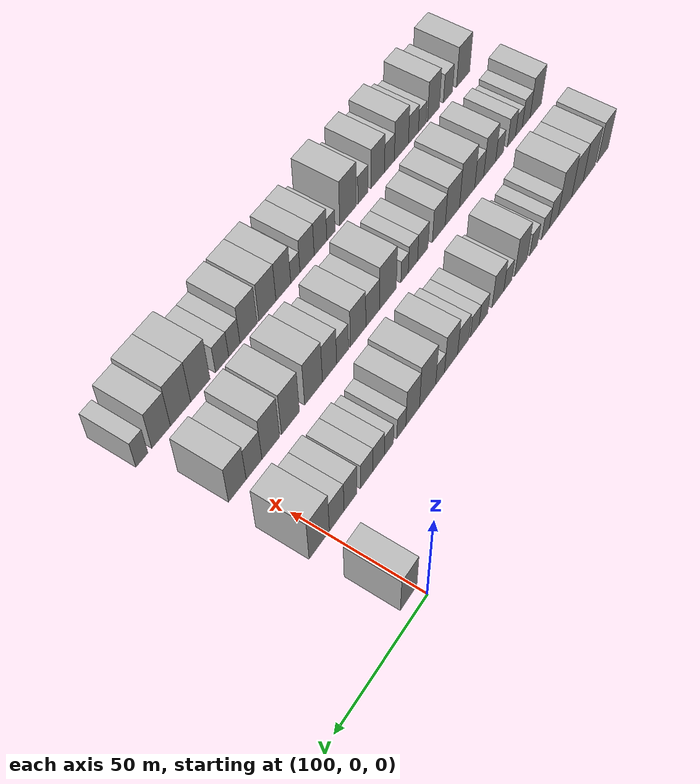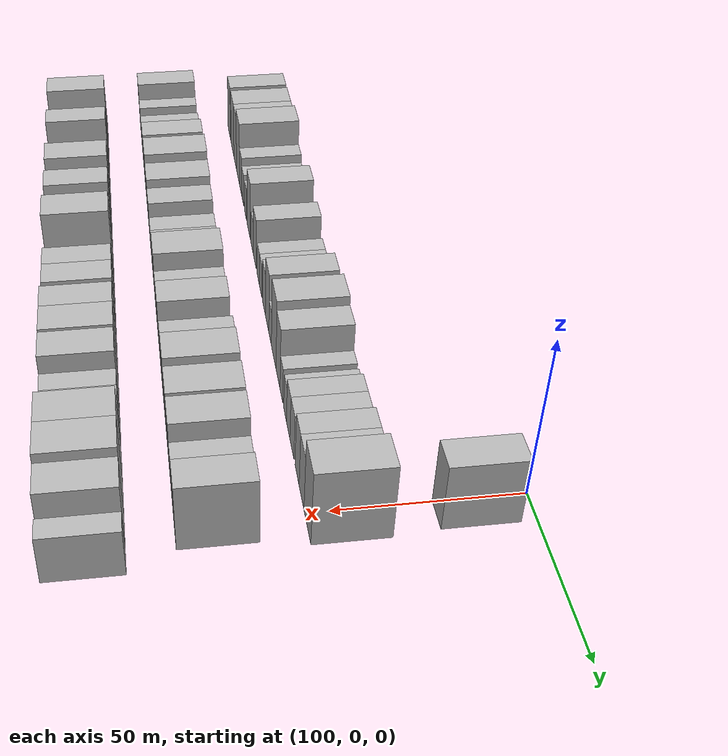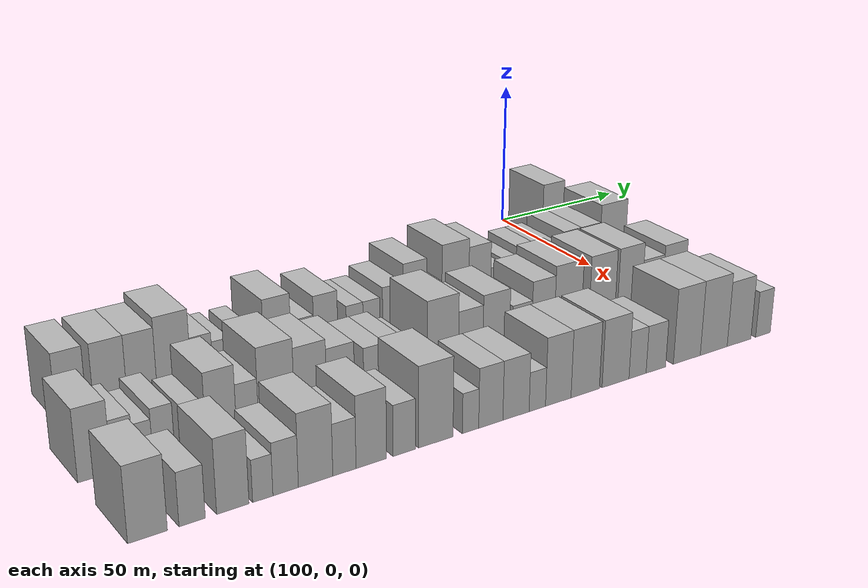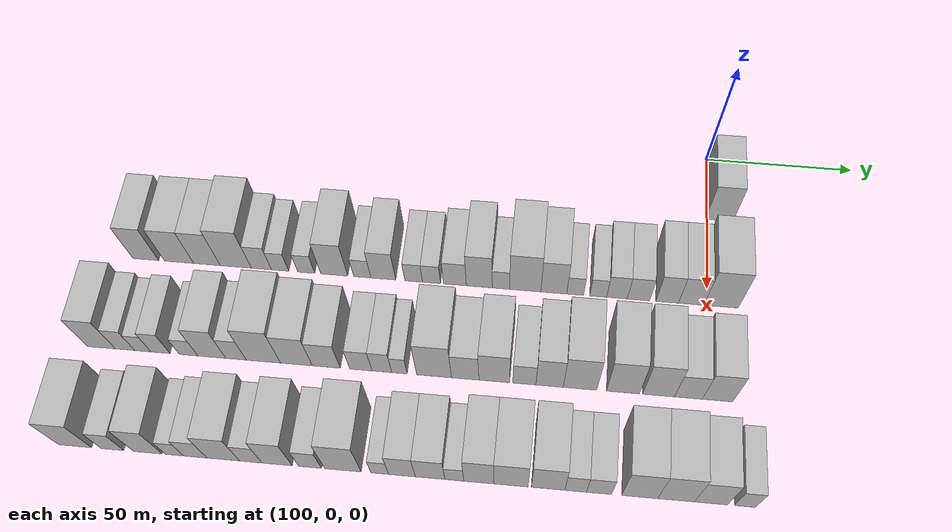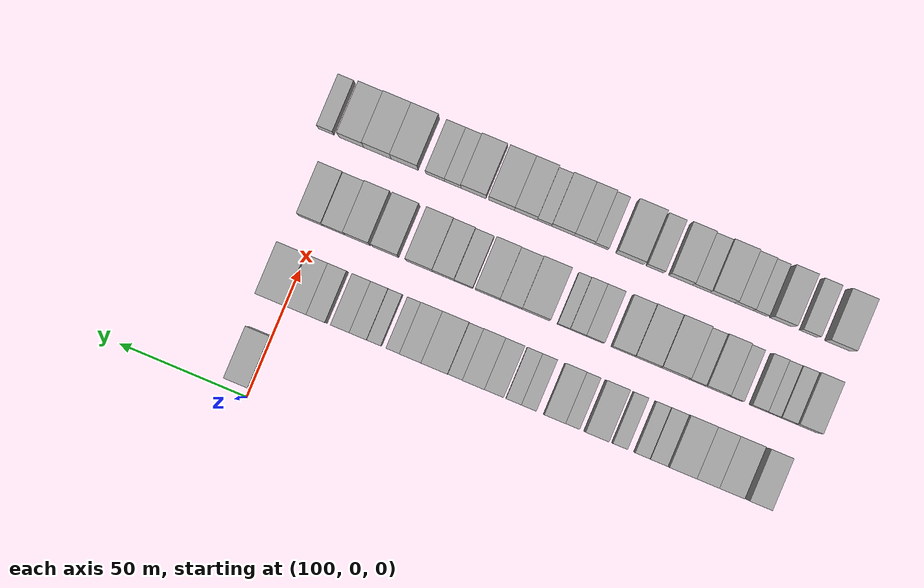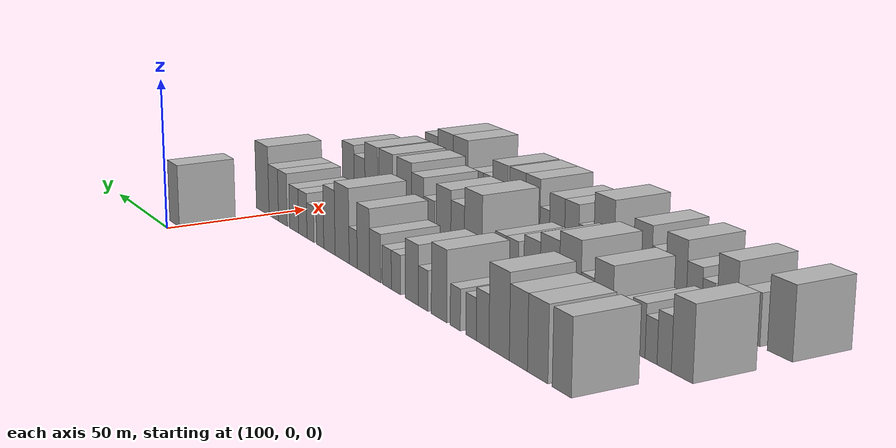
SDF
<sdf version="1.6">
 <world name="default">
  <model name="building_300">
   <static>1</static>
   <pose>114.0000 4.1435 0 0.000000 0.000000 0.000000</pose>
   <link name="link">
    <pose>0 0 10.50 0 0 0</pose>
    <collision name="collision"><geometry><box><size>20.0000 9.3082 21.0000</size></box></geometry></collision>
    <visual name="visual">
     <cast_shadows>0</cast_shadows>
     <geometry><box><size>20.0000 9.3082 21.0000</size></box></geometry>
     <material>
      <script>
       <uri>model://HANNAS_wall/materials/scripts</uri>
       <uri>model://HANNAS_wall/materials/textures</uri>
       <name>vrc/HANNAS_wall</name>
      </script>
     </material>
    </visual>
   </link>
  </model>
  <model name="building_396">
   <static>1</static>
   <pose>146.0000 -184.8629 0 0.000000 0.000000 0.000000</pose>
   <link name="link">
    <pose>0 0 10.50 0 0 0</pose>
    <collision name="collision"><geometry><box><size>20.0000 8.6927 21.0000</size></box></geometry></collision>
    <visual name="visual">
     <cast_shadows>0</cast_shadows>
     <geometry><box><size>20.0000 8.6927 21.0000</size></box></geometry>
     <material>
      <script>
       <uri>model://HANNAS_wall/materials/scripts</uri>
       <uri>model://HANNAS_wall/materials/textures</uri>
       <name>vrc/HANNAS_wall</name>
      </script>
     </material>
    </visual>
   </link>
  </model>
  <model name="building_397">
   <static>1</static>
   <pose>146.0000 -173.6472 0 0.000000 0.000000 0.000000</pose>
   <link name="link">
    <pose>0 0 10.50 0 0 0</pose>
    <collision name="collision"><geometry><box><size>20.0000 9.7388 21.0000</size></box></geometry></collision>
    <visual name="visual">
     <cast_shadows>0</cast_shadows>
     <geometry><box><size>20.0000 9.7388 21.0000</size></box></geometry>
     <material>
      <script>
       <uri>model://HANNAS_wall/materials/scripts</uri>
       <uri>model://HANNAS_wall/materials/textures</uri>
       <name>vrc/HANNAS_wall</name>
      </script>
     </material>
    </visual>
   </link>
  </model>
  <model name="building_398">
   <static>1</static>
   <pose>146.0000 -164.3111 0 0.000000 0.000000 0.000000</pose>
   <link name="link">
    <pose>0 0 10.50 0 0 0</pose>
    <collision name="collision"><geometry><box><size>20.0000 8.9334 21.0000</size></box></geometry></collision>
    <visual name="visual">
     <cast_shadows>0</cast_shadows>
     <geometry><box><size>20.0000 8.9334 21.0000</size></box></geometry>
     <material>
      <script>
       <uri>model://HANNAS_wall/materials/scripts</uri>
       <uri>model://HANNAS_wall/materials/textures</uri>
       <name>vrc/HANNAS_wall</name>
      </script>
     </material>
    </visual>
   </link>
  </model>
  <model name="building_399">
   <static>1</static>
   <pose>146.0000 -154.6251 0 0.000000 0.000000 0.000000</pose>
   <link name="link">
    <pose>0 0 12.00 0 0 0</pose>
    <collision name="collision"><geometry><box><size>20.0000 10.4385 24.0000</size></box></geometry></collision>
    <visual name="visual">
     <cast_shadows>0</cast_shadows>
     <geometry><box><size>20.0000 10.4385 24.0000</size></box></geometry>
     <material>
      <script>
       <uri>model://HANNAS_wall/materials/scripts</uri>
       <uri>model://HANNAS_wall/materials/textures</uri>
       <name>vrc/HANNAS_wall</name>
      </script>
     </material>
    </visual>
   </link>
  </model>
  <model name="building_400">
   <static>1</static>
   <pose>146.0000 -146.0442 0 0.000000 0.000000 0.000000</pose>
   <link name="link">
    <pose>0 0 7.50 0 0 0</pose>
    <collision name="collision"><geometry><box><size>20.0000 6.7233 15.0000</size></box></geometry></collision>
    <visual name="visual">
     <cast_shadows>0</cast_shadows>
     <geometry><box><size>20.0000 6.7233 15.0000</size></box></geometry>
     <material>
      <script>
       <uri>model://HANNAS_wall/materials/scripts</uri>
       <uri>model://HANNAS_wall/materials/textures</uri>
       <name>vrc/HANNAS_wall</name>
      </script>
     </material>
    </visual>
   </link>
  </model>
  <model name="building_401">
   <static>1</static>
   <pose>146.0000 -139.8177 0 0.000000 0.000000 0.000000</pose>
   <link name="link">
    <pose>0 0 6.00 0 0 0</pose>
    <collision name="collision"><geometry><box><size>20.0000 5.7298 12.0000</size></box></geometry></collision>
    <visual name="visual">
     <cast_shadows>0</cast_shadows>
     <geometry><box><size>20.0000 5.7298 12.0000</size></box></geometry>
     <material>
      <script>
       <uri>model://HANNAS_wall/materials/scripts</uri>
       <uri>model://HANNAS_wall/materials/textures</uri>
       <name>vrc/HANNAS_wall</name>
      </script>
     </material>
    </visual>
   </link>
  </model>
  <model name="building_402">
   <static>1</static>
   <pose>146.0000 -131.1283 0 0.000000 0.000000 0.000000</pose>
   <link name="link">
    <pose>0 0 6.00 0 0 0</pose>
    <collision name="collision"><geometry><box><size>20.0000 5.6490 12.0000</size></box></geometry></collision>
    <visual name="visual">
     <cast_shadows>0</cast_shadows>
     <geometry><box><size>20.0000 5.6490 12.0000</size></box></geometry>
     <material>
      <script>
       <uri>model://HANNAS_wall/materials/scripts</uri>
       <uri>model://HANNAS_wall/materials/textures</uri>
       <name>vrc/HANNAS_wall</name>
      </script>
     </material>
    </visual>
   </link>
  </model>
  <model name="building_403">
   <static>1</static>
   <pose>146.0000 -121.8297 0 0.000000 0.000000 0.000000</pose>
   <link name="link">
    <pose>0 0 10.50 0 0 0</pose>
    <collision name="collision"><geometry><box><size>20.0000 8.9483 21.0000</size></box></geometry></collision>
    <visual name="visual">
     <cast_shadows>0</cast_shadows>
     <geometry><box><size>20.0000 8.9483 21.0000</size></box></geometry>
     <material>
      <script>
       <uri>model://HANNAS_wall/materials/scripts</uri>
       <uri>model://HANNAS_wall/materials/textures</uri>
       <name>vrc/HANNAS_wall</name>
      </script>
     </material>
    </visual>
   </link>
  </model>
  <model name="building_404">
   <static>1</static>
   <pose>146.0000 -112.5162 0 0.000000 0.000000 0.000000</pose>
   <link name="link">
    <pose>0 0 6.00 0 0 0</pose>
    <collision name="collision"><geometry><box><size>20.0000 5.6787 12.0000</size></box></geometry></collision>
    <visual name="visual">
     <cast_shadows>0</cast_shadows>
     <geometry><box><size>20.0000 5.6787 12.0000</size></box></geometry>
     <material>
      <script>
       <uri>model://HANNAS_wall/materials/scripts</uri>
       <uri>model://HANNAS_wall/materials/textures</uri>
       <name>vrc/HANNAS_wall</name>
      </script>
     </material>
    </visual>
   </link>
  </model>
  <model name="building_405">
   <static>1</static>
   <pose>146.0000 -105.5945 0 0.000000 0.000000 0.000000</pose>
   <link name="link">
    <pose>0 0 9.00 0 0 0</pose>
    <collision name="collision"><geometry><box><size>20.0000 8.1646 18.0000</size></box></geometry></collision>
    <visual name="visual">
     <cast_shadows>0</cast_shadows>
     <geometry><box><size>20.0000 8.1646 18.0000</size></box></geometry>
     <material>
      <script>
       <uri>model://HANNAS_wall/materials/scripts</uri>
       <uri>model://HANNAS_wall/materials/textures</uri>
       <name>vrc/HANNAS_wall</name>
      </script>
     </material>
    </visual>
   </link>
  </model>
  <model name="building_406">
   <static>1</static>
   <pose>146.0000 -95.5960 0 0.000000 0.000000 0.000000</pose>
   <link name="link">
    <pose>0 0 6.00 0 0 0</pose>
    <collision name="collision"><geometry><box><size>20.0000 5.8324 12.0000</size></box></geometry></collision>
    <visual name="visual">
     <cast_shadows>0</cast_shadows>
     <geometry><box><size>20.0000 5.8324 12.0000</size></box></geometry>
     <material>
      <script>
       <uri>model://HANNAS_wall/materials/scripts</uri>
       <uri>model://HANNAS_wall/materials/textures</uri>
       <name>vrc/HANNAS_wall</name>
      </script>
     </material>
    </visual>
   </link>
  </model>
  <model name="building_407">
   <static>1</static>
   <pose>146.0000 -89.7184 0 0.000000 0.000000 0.000000</pose>
   <link name="link">
    <pose>0 0 6.00 0 0 0</pose>
    <collision name="collision"><geometry><box><size>20.0000 5.9228 12.0000</size></box></geometry></collision>
    <visual name="visual">
     <cast_shadows>0</cast_shadows>
     <geometry><box><size>20.0000 5.9228 12.0000</size></box></geometry>
     <material>
      <script>
       <uri>model://HANNAS_wall/materials/scripts</uri>
       <uri>model://HANNAS_wall/materials/textures</uri>
       <name>vrc/HANNAS_wall</name>
      </script>
     </material>
    </visual>
   </link>
  </model>
  <model name="building_408">
   <static>1</static>
   <pose>146.0000 -82.0194 0 0.000000 0.000000 0.000000</pose>
   <link name="link">
    <pose>0 0 7.50 0 0 0</pose>
    <collision name="collision"><geometry><box><size>20.0000 7.4752 15.0000</size></box></geometry></collision>
    <visual name="visual">
     <cast_shadows>0</cast_shadows>
     <geometry><box><size>20.0000 7.4752 15.0000</size></box></geometry>
     <material>
      <script>
       <uri>model://HANNAS_wall/materials/scripts</uri>
       <uri>model://HANNAS_wall/materials/textures</uri>
       <name>vrc/HANNAS_wall</name>
      </script>
     </material>
    </visual>
   </link>
  </model>
  <model name="building_409">
   <static>1</static>
   <pose>146.0000 -74.0282 0 0.000000 0.000000 0.000000</pose>
   <link name="link">
    <pose>0 0 10.50 0 0 0</pose>
    <collision name="collision"><geometry><box><size>20.0000 8.5072 21.0000</size></box></geometry></collision>
    <visual name="visual">
     <cast_shadows>0</cast_shadows>
     <geometry><box><size>20.0000 8.5072 21.0000</size></box></geometry>
     <material>
      <script>
       <uri>model://HANNAS_wall/materials/scripts</uri>
       <uri>model://HANNAS_wall/materials/textures</uri>
       <name>vrc/HANNAS_wall</name>
      </script>
     </material>
    </visual>
   </link>
  </model>
  <model name="building_410">
   <static>1</static>
   <pose>146.0000 -66.9501 0 0.000000 0.000000 0.000000</pose>
   <link name="link">
    <pose>0 0 6.00 0 0 0</pose>
    <collision name="collision"><geometry><box><size>20.0000 5.6491 12.0000</size></box></geometry></collision>
    <visual name="visual">
     <cast_shadows>0</cast_shadows>
     <geometry><box><size>20.0000 5.6491 12.0000</size></box></geometry>
     <material>
      <script>
       <uri>model://HANNAS_wall/materials/scripts</uri>
       <uri>model://HANNAS_wall/materials/textures</uri>
       <name>vrc/HANNAS_wall</name>
      </script>
     </material>
    </visual>
   </link>
  </model>
  <model name="building_411">
   <static>1</static>
   <pose>146.0000 -59.0236 0 0.000000 0.000000 0.000000</pose>
   <link name="link">
    <pose>0 0 12.00 0 0 0</pose>
    <collision name="collision"><geometry><box><size>20.0000 10.2037 24.0000</size></box></geometry></collision>
    <visual name="visual">
     <cast_shadows>0</cast_shadows>
     <geometry><box><size>20.0000 10.2037 24.0000</size></box></geometry>
     <material>
      <script>
       <uri>model://HANNAS_wall/materials/scripts</uri>
       <uri>model://HANNAS_wall/materials/textures</uri>
       <name>vrc/HANNAS_wall</name>
      </script>
     </material>
    </visual>
   </link>
  </model>
  <model name="building_412">
   <static>1</static>
   <pose>146.0000 -49.7095 0 0.000000 0.000000 0.000000</pose>
   <link name="link">
    <pose>0 0 10.50 0 0 0</pose>
    <collision name="collision"><geometry><box><size>20.0000 8.4246 21.0000</size></box></geometry></collision>
    <visual name="visual">
     <cast_shadows>0</cast_shadows>
     <geometry><box><size>20.0000 8.4246 21.0000</size></box></geometry>
     <material>
      <script>
       <uri>model://HANNAS_wall/materials/scripts</uri>
       <uri>model://HANNAS_wall/materials/textures</uri>
       <name>vrc/HANNAS_wall</name>
      </script>
     </material>
    </visual>
   </link>
  </model>
  <model name="building_413">
   <static>1</static>
   <pose>146.0000 -42.7524 0 0.000000 0.000000 0.000000</pose>
   <link name="link">
    <pose>0 0 6.00 0 0 0</pose>
    <collision name="collision"><geometry><box><size>20.0000 5.4895 12.0000</size></box></geometry></collision>
    <visual name="visual">
     <cast_shadows>0</cast_shadows>
     <geometry><box><size>20.0000 5.4895 12.0000</size></box></geometry>
     <material>
      <script>
       <uri>model://HANNAS_wall/materials/scripts</uri>
       <uri>model://HANNAS_wall/materials/textures</uri>
       <name>vrc/HANNAS_wall</name>
      </script>
     </material>
    </visual>
   </link>
  </model>
  <model name="building_414">
   <static>1</static>
   <pose>146.0000 -35.2825 0 0.000000 0.000000 0.000000</pose>
   <link name="link">
    <pose>0 0 6.00 0 0 0</pose>
    <collision name="collision"><geometry><box><size>20.0000 5.4504 12.0000</size></box></geometry></collision>
    <visual name="visual">
     <cast_shadows>0</cast_shadows>
     <geometry><box><size>20.0000 5.4504 12.0000</size></box></geometry>
     <material>
      <script>
       <uri>model://HANNAS_wall/materials/scripts</uri>
       <uri>model://HANNAS_wall/materials/textures</uri>
       <name>vrc/HANNAS_wall</name>
      </script>
     </material>
    </visual>
   </link>
  </model>
  <model name="building_415">
   <static>1</static>
   <pose>146.0000 -29.1993 0 0.000000 0.000000 0.000000</pose>
   <link name="link">
    <pose>0 0 7.50 0 0 0</pose>
    <collision name="collision"><geometry><box><size>20.0000 6.7161 15.0000</size></box></geometry></collision>
    <visual name="visual">
     <cast_shadows>0</cast_shadows>
     <geometry><box><size>20.0000 6.7161 15.0000</size></box></geometry>
     <material>
      <script>
       <uri>model://HANNAS_wall/materials/scripts</uri>
       <uri>model://HANNAS_wall/materials/textures</uri>
       <name>vrc/HANNAS_wall</name>
      </script>
     </material>
    </visual>
   </link>
  </model>
  <model name="building_416">
   <static>1</static>
   <pose>146.0000 -22.2157 0 0.000000 0.000000 0.000000</pose>
   <link name="link">
    <pose>0 0 7.50 0 0 0</pose>
    <collision name="collision"><geometry><box><size>20.0000 7.2511 15.0000</size></box></geometry></collision>
    <visual name="visual">
     <cast_shadows>0</cast_shadows>
     <geometry><box><size>20.0000 7.2511 15.0000</size></box></geometry>
     <material>
      <script>
       <uri>model://HANNAS_wall/materials/scripts</uri>
       <uri>model://HANNAS_wall/materials/textures</uri>
       <name>vrc/HANNAS_wall</name>
      </script>
     </material>
    </visual>
   </link>
  </model>
  <model name="building_417">
   <static>1</static>
   <pose>146.0000 -12.9556 0 0.000000 0.000000 0.000000</pose>
   <link name="link">
    <pose>0 0 9.00 0 0 0</pose>
    <collision name="collision"><geometry><box><size>20.0000 7.2691 18.0000</size></box></geometry></collision>
    <visual name="visual">
     <cast_shadows>0</cast_shadows>
     <geometry><box><size>20.0000 7.2691 18.0000</size></box></geometry>
     <material>
      <script>
       <uri>model://HANNAS_wall/materials/scripts</uri>
       <uri>model://HANNAS_wall/materials/textures</uri>
       <name>vrc/HANNAS_wall</name>
      </script>
     </material>
    </visual>
   </link>
  </model>
  <model name="building_418">
   <static>1</static>
   <pose>146.0000 -5.2402 0 0.000000 0.000000 0.000000</pose>
   <link name="link">
    <pose>0 0 9.00 0 0 0</pose>
    <collision name="collision"><geometry><box><size>20.0000 8.1616 18.0000</size></box></geometry></collision>
    <visual name="visual">
     <cast_shadows>0</cast_shadows>
     <geometry><box><size>20.0000 8.1616 18.0000</size></box></geometry>
     <material>
      <script>
       <uri>model://HANNAS_wall/materials/scripts</uri>
       <uri>model://HANNAS_wall/materials/textures</uri>
       <name>vrc/HANNAS_wall</name>
      </script>
     </material>
    </visual>
   </link>
  </model>
  <model name="building_419">
   <static>1</static>
   <pose>146.0000 4.3986 0 0.000000 0.000000 0.000000</pose>
   <link name="link">
    <pose>0 0 12.00 0 0 0</pose>
    <collision name="collision"><geometry><box><size>20.0000 11.1161 24.0000</size></box></geometry></collision>
    <visual name="visual">
     <cast_shadows>0</cast_shadows>
     <geometry><box><size>20.0000 11.1161 24.0000</size></box></geometry>
     <material>
      <script>
       <uri>model://HANNAS_wall/materials/scripts</uri>
       <uri>model://HANNAS_wall/materials/textures</uri>
       <name>vrc/HANNAS_wall</name>
      </script>
     </material>
    </visual>
   </link>
  </model>
  <model name="building_515">
   <static>1</static>
   <pose>178.0000 -190.9835 0 0.000000 0.000000 0.000000</pose>
   <link name="link">
    <pose>0 0 10.50 0 0 0</pose>
    <collision name="collision"><geometry><box><size>20.0000 8.9903 21.0000</size></box></geometry></collision>
    <visual name="visual">
     <cast_shadows>0</cast_shadows>
     <geometry><box><size>20.0000 8.9903 21.0000</size></box></geometry>
     <material>
      <script>
       <uri>model://HANNAS_wall/materials/scripts</uri>
       <uri>model://HANNAS_wall/materials/textures</uri>
       <name>vrc/HANNAS_wall</name>
      </script>
     </material>
    </visual>
   </link>
  </model>
  <model name="building_516">
   <static>1</static>
   <pose>178.0000 -183.4080 0 0.000000 0.000000 0.000000</pose>
   <link name="link">
    <pose>0 0 7.50 0 0 0</pose>
    <collision name="collision"><geometry><box><size>20.0000 6.1605 15.0000</size></box></geometry></collision>
    <visual name="visual">
     <cast_shadows>0</cast_shadows>
     <geometry><box><size>20.0000 6.1605 15.0000</size></box></geometry>
     <material>
      <script>
       <uri>model://HANNAS_wall/materials/scripts</uri>
       <uri>model://HANNAS_wall/materials/textures</uri>
       <name>vrc/HANNAS_wall</name>
      </script>
     </material>
    </visual>
   </link>
  </model>
  <model name="building_517">
   <static>1</static>
   <pose>178.0000 -177.6864 0 0.000000 0.000000 0.000000</pose>
   <link name="link">
    <pose>0 0 6.00 0 0 0</pose>
    <collision name="collision"><geometry><box><size>20.0000 5.2828 12.0000</size></box></geometry></collision>
    <visual name="visual">
     <cast_shadows>0</cast_shadows>
     <geometry><box><size>20.0000 5.2828 12.0000</size></box></geometry>
     <material>
      <script>
       <uri>model://HANNAS_wall/materials/scripts</uri>
       <uri>model://HANNAS_wall/materials/textures</uri>
       <name>vrc/HANNAS_wall</name>
      </script>
     </material>
    </visual>
   </link>
  </model>
  <model name="building_518">
   <static>1</static>
   <pose>178.0000 -171.9882 0 0.000000 0.000000 0.000000</pose>
   <link name="link">
    <pose>0 0 7.50 0 0 0</pose>
    <collision name="collision"><geometry><box><size>20.0000 6.1137 15.0000</size></box></geometry></collision>
    <visual name="visual">
     <cast_shadows>0</cast_shadows>
     <geometry><box><size>20.0000 6.1137 15.0000</size></box></geometry>
     <material>
      <script>
       <uri>model://HANNAS_wall/materials/scripts</uri>
       <uri>model://HANNAS_wall/materials/textures</uri>
       <name>vrc/HANNAS_wall</name>
      </script>
     </material>
    </visual>
   </link>
  </model>
  <model name="building_519">
   <static>1</static>
   <pose>178.0000 -162.9668 0 0.000000 0.000000 0.000000</pose>
   <link name="link">
    <pose>0 0 6.00 0 0 0</pose>
    <collision name="collision"><geometry><box><size>20.0000 5.9289 12.0000</size></box></geometry></collision>
    <visual name="visual">
     <cast_shadows>0</cast_shadows>
     <geometry><box><size>20.0000 5.9289 12.0000</size></box></geometry>
     <material>
      <script>
       <uri>model://HANNAS_wall/materials/scripts</uri>
       <uri>model://HANNAS_wall/materials/textures</uri>
       <name>vrc/HANNAS_wall</name>
      </script>
     </material>
    </visual>
   </link>
  </model>
  <model name="building_520">
   <static>1</static>
   <pose>178.0000 -155.5308 0 0.000000 0.000000 0.000000</pose>
   <link name="link">
    <pose>0 0 10.50 0 0 0</pose>
    <collision name="collision"><geometry><box><size>20.0000 8.9432 21.0000</size></box></geometry></collision>
    <visual name="visual">
     <cast_shadows>0</cast_shadows>
     <geometry><box><size>20.0000 8.9432 21.0000</size></box></geometry>
     <material>
      <script>
       <uri>model://HANNAS_wall/materials/scripts</uri>
       <uri>model://HANNAS_wall/materials/textures</uri>
       <name>vrc/HANNAS_wall</name>
      </script>
     </material>
    </visual>
   </link>
  </model>
  <model name="building_521">
   <static>1</static>
   <pose>178.0000 -147.7754 0 0.000000 0.000000 0.000000</pose>
   <link name="link">
    <pose>0 0 7.50 0 0 0</pose>
    <collision name="collision"><geometry><box><size>20.0000 6.5675 15.0000</size></box></geometry></collision>
    <visual name="visual">
     <cast_shadows>0</cast_shadows>
     <geometry><box><size>20.0000 6.5675 15.0000</size></box></geometry>
     <material>
      <script>
       <uri>model://HANNAS_wall/materials/scripts</uri>
       <uri>model://HANNAS_wall/materials/textures</uri>
       <name>vrc/HANNAS_wall</name>
      </script>
     </material>
    </visual>
   </link>
  </model>
  <model name="building_522">
   <static>1</static>
   <pose>178.0000 -139.0363 0 0.000000 0.000000 0.000000</pose>
   <link name="link">
    <pose>0 0 12.00 0 0 0</pose>
    <collision name="collision"><geometry><box><size>20.0000 10.9106 24.0000</size></box></geometry></collision>
    <visual name="visual">
     <cast_shadows>0</cast_shadows>
     <geometry><box><size>20.0000 10.9106 24.0000</size></box></geometry>
     <material>
      <script>
       <uri>model://HANNAS_wall/materials/scripts</uri>
       <uri>model://HANNAS_wall/materials/textures</uri>
       <name>vrc/HANNAS_wall</name>
      </script>
     </material>
    </visual>
   </link>
  </model>
  <model name="building_523">
   <static>1</static>
   <pose>178.0000 -128.5383 0 0.000000 0.000000 0.000000</pose>
   <link name="link">
    <pose>0 0 10.50 0 0 0</pose>
    <collision name="collision"><geometry><box><size>20.0000 10.0856 21.0000</size></box></geometry></collision>
    <visual name="visual">
     <cast_shadows>0</cast_shadows>
     <geometry><box><size>20.0000 10.0856 21.0000</size></box></geometry>
     <material>
      <script>
       <uri>model://HANNAS_wall/materials/scripts</uri>
       <uri>model://HANNAS_wall/materials/textures</uri>
       <name>vrc/HANNAS_wall</name>
      </script>
     </material>
    </visual>
   </link>
  </model>
  <model name="building_524">
   <static>1</static>
   <pose>178.0000 -119.0510 0 0.000000 0.000000 0.000000</pose>
   <link name="link">
    <pose>0 0 9.00 0 0 0</pose>
    <collision name="collision"><geometry><box><size>20.0000 8.8889 18.0000</size></box></geometry></collision>
    <visual name="visual">
     <cast_shadows>0</cast_shadows>
     <geometry><box><size>20.0000 8.8889 18.0000</size></box></geometry>
     <material>
      <script>
       <uri>model://HANNAS_wall/materials/scripts</uri>
       <uri>model://HANNAS_wall/materials/textures</uri>
       <name>vrc/HANNAS_wall</name>
      </script>
     </material>
    </visual>
   </link>
  </model>
  <model name="building_525">
   <static>1</static>
   <pose>178.0000 -108.0852 0 0.000000 0.000000 0.000000</pose>
   <link name="link">
    <pose>0 0 7.50 0 0 0</pose>
    <collision name="collision"><geometry><box><size>20.0000 7.0427 15.0000</size></box></geometry></collision>
    <visual name="visual">
     <cast_shadows>0</cast_shadows>
     <geometry><box><size>20.0000 7.0427 15.0000</size></box></geometry>
     <material>
      <script>
       <uri>model://HANNAS_wall/materials/scripts</uri>
       <uri>model://HANNAS_wall/materials/textures</uri>
       <name>vrc/HANNAS_wall</name>
      </script>
     </material>
    </visual>
   </link>
  </model>
  <model name="building_526">
   <static>1</static>
   <pose>178.0000 -101.4512 0 0.000000 0.000000 0.000000</pose>
   <link name="link">
    <pose>0 0 7.50 0 0 0</pose>
    <collision name="collision"><geometry><box><size>20.0000 6.2253 15.0000</size></box></geometry></collision>
    <visual name="visual">
     <cast_shadows>0</cast_shadows>
     <geometry><box><size>20.0000 6.2253 15.0000</size></box></geometry>
     <material>
      <script>
       <uri>model://HANNAS_wall/materials/scripts</uri>
       <uri>model://HANNAS_wall/materials/textures</uri>
       <name>vrc/HANNAS_wall</name>
      </script>
     </material>
    </visual>
   </link>
  </model>
  <model name="building_527">
   <static>1</static>
   <pose>178.0000 -95.9144 0 0.000000 0.000000 0.000000</pose>
   <link name="link">
    <pose>0 0 6.00 0 0 0</pose>
    <collision name="collision"><geometry><box><size>20.0000 4.8484 12.0000</size></box></geometry></collision>
    <visual name="visual">
     <cast_shadows>0</cast_shadows>
     <geometry><box><size>20.0000 4.8484 12.0000</size></box></geometry>
     <material>
      <script>
       <uri>model://HANNAS_wall/materials/scripts</uri>
       <uri>model://HANNAS_wall/materials/textures</uri>
       <name>vrc/HANNAS_wall</name>
      </script>
     </material>
    </visual>
   </link>
  </model>
  <model name="building_528">
   <static>1</static>
   <pose>178.0000 -85.0503 0 0.000000 0.000000 0.000000</pose>
   <link name="link">
    <pose>0 0 12.00 0 0 0</pose>
    <collision name="collision"><geometry><box><size>20.0000 10.8799 24.0000</size></box></geometry></collision>
    <visual name="visual">
     <cast_shadows>0</cast_shadows>
     <geometry><box><size>20.0000 10.8799 24.0000</size></box></geometry>
     <material>
      <script>
       <uri>model://HANNAS_wall/materials/scripts</uri>
       <uri>model://HANNAS_wall/materials/textures</uri>
       <name>vrc/HANNAS_wall</name>
      </script>
     </material>
    </visual>
   </link>
  </model>
  <model name="building_529">
   <static>1</static>
   <pose>178.0000 -75.3057 0 0.000000 0.000000 0.000000</pose>
   <link name="link">
    <pose>0 0 9.00 0 0 0</pose>
    <collision name="collision"><geometry><box><size>20.0000 8.6093 18.0000</size></box></geometry></collision>
    <visual name="visual">
     <cast_shadows>0</cast_shadows>
     <geometry><box><size>20.0000 8.6093 18.0000</size></box></geometry>
     <material>
      <script>
       <uri>model://HANNAS_wall/materials/scripts</uri>
       <uri>model://HANNAS_wall/materials/textures</uri>
       <name>vrc/HANNAS_wall</name>
      </script>
     </material>
    </visual>
   </link>
  </model>
  <model name="building_530">
   <static>1</static>
   <pose>178.0000 -66.1988 0 0.000000 0.000000 0.000000</pose>
   <link name="link">
    <pose>0 0 10.50 0 0 0</pose>
    <collision name="collision"><geometry><box><size>20.0000 9.6046 21.0000</size></box></geometry></collision>
    <visual name="visual">
     <cast_shadows>0</cast_shadows>
     <geometry><box><size>20.0000 9.6046 21.0000</size></box></geometry>
     <material>
      <script>
       <uri>model://HANNAS_wall/materials/scripts</uri>
       <uri>model://HANNAS_wall/materials/textures</uri>
       <name>vrc/HANNAS_wall</name>
      </script>
     </material>
    </visual>
   </link>
  </model>
  <model name="building_531">
   <static>1</static>
   <pose>178.0000 -56.7886 0 0.000000 0.000000 0.000000</pose>
   <link name="link">
    <pose>0 0 7.50 0 0 0</pose>
    <collision name="collision"><geometry><box><size>20.0000 7.2157 15.0000</size></box></geometry></collision>
    <visual name="visual">
     <cast_shadows>0</cast_shadows>
     <geometry><box><size>20.0000 7.2157 15.0000</size></box></geometry>
     <material>
      <script>
       <uri>model://HANNAS_wall/materials/scripts</uri>
       <uri>model://HANNAS_wall/materials/textures</uri>
       <name>vrc/HANNAS_wall</name>
      </script>
     </material>
    </visual>
   </link>
  </model>
  <model name="building_532">
   <static>1</static>
   <pose>178.0000 -48.9332 0 0.000000 0.000000 0.000000</pose>
   <link name="link">
    <pose>0 0 10.50 0 0 0</pose>
    <collision name="collision"><geometry><box><size>20.0000 8.4951 21.0000</size></box></geometry></collision>
    <visual name="visual">
     <cast_shadows>0</cast_shadows>
     <geometry><box><size>20.0000 8.4951 21.0000</size></box></geometry>
     <material>
      <script>
       <uri>model://HANNAS_wall/materials/scripts</uri>
       <uri>model://HANNAS_wall/materials/textures</uri>
       <name>vrc/HANNAS_wall</name>
      </script>
     </material>
    </visual>
   </link>
  </model>
  <model name="building_533">
   <static>1</static>
   <pose>178.0000 -39.4747 0 0.000000 0.000000 0.000000</pose>
   <link name="link">
    <pose>0 0 12.00 0 0 0</pose>
    <collision name="collision"><geometry><box><size>20.0000 10.4219 24.0000</size></box></geometry></collision>
    <visual name="visual">
     <cast_shadows>0</cast_shadows>
     <geometry><box><size>20.0000 10.4219 24.0000</size></box></geometry>
     <material>
      <script>
       <uri>model://HANNAS_wall/materials/scripts</uri>
       <uri>model://HANNAS_wall/materials/textures</uri>
       <name>vrc/HANNAS_wall</name>
      </script>
     </material>
    </visual>
   </link>
  </model>
  <model name="building_534">
   <static>1</static>
   <pose>178.0000 -26.1584 0 0.000000 0.000000 0.000000</pose>
   <link name="link">
    <pose>0 0 12.00 0 0 0</pose>
    <collision name="collision"><geometry><box><size>20.0000 10.2108 24.0000</size></box></geometry></collision>
    <visual name="visual">
     <cast_shadows>0</cast_shadows>
     <geometry><box><size>20.0000 10.2108 24.0000</size></box></geometry>
     <material>
      <script>
       <uri>model://HANNAS_wall/materials/scripts</uri>
       <uri>model://HANNAS_wall/materials/textures</uri>
       <name>vrc/HANNAS_wall</name>
      </script>
     </material>
    </visual>
   </link>
  </model>
  <model name="building_535">
   <static>1</static>
   <pose>178.0000 -15.1530 0 0.000000 0.000000 0.000000</pose>
   <link name="link">
    <pose>0 0 12.00 0 0 0</pose>
    <collision name="collision"><geometry><box><size>20.0000 9.8000 24.0000</size></box></geometry></collision>
    <visual name="visual">
     <cast_shadows>0</cast_shadows>
     <geometry><box><size>20.0000 9.8000 24.0000</size></box></geometry>
     <material>
      <script>
       <uri>model://HANNAS_wall/materials/scripts</uri>
       <uri>model://HANNAS_wall/materials/textures</uri>
       <name>vrc/HANNAS_wall</name>
      </script>
     </material>
    </visual>
   </link>
  </model>
  <model name="building_536">
   <static>1</static>
   <pose>178.0000 -5.9616 0 0.000000 0.000000 0.000000</pose>
   <link name="link">
    <pose>0 0 9.00 0 0 0</pose>
    <collision name="collision"><geometry><box><size>20.0000 8.5829 18.0000</size></box></geometry></collision>
    <visual name="visual">
     <cast_shadows>0</cast_shadows>
     <geometry><box><size>20.0000 8.5829 18.0000</size></box></geometry>
     <material>
      <script>
       <uri>model://HANNAS_wall/materials/scripts</uri>
       <uri>model://HANNAS_wall/materials/textures</uri>
       <name>vrc/HANNAS_wall</name>
      </script>
     </material>
    </visual>
   </link>
  </model>
  <model name="building_537">
   <static>1</static>
   <pose>178.0000 3.0246 0 0.000000 0.000000 0.000000</pose>
   <link name="link">
    <pose>0 0 10.50 0 0 0</pose>
    <collision name="collision"><geometry><box><size>20.0000 9.3895 21.0000</size></box></geometry></collision>
    <visual name="visual">
     <cast_shadows>0</cast_shadows>
     <geometry><box><size>20.0000 9.3895 21.0000</size></box></geometry>
     <material>
      <script>
       <uri>model://HANNAS_wall/materials/scripts</uri>
       <uri>model://HANNAS_wall/materials/textures</uri>
       <name>vrc/HANNAS_wall</name>
      </script>
     </material>
    </visual>
   </link>
  </model>
  <model name="building_628">
   <static>1</static>
   <pose>210.0000 -190.3258 0 0.000000 0.000000 0.000000</pose>
   <link name="link">
    <pose>0 0 10.50 0 0 0</pose>
    <collision name="collision"><geometry><box><size>20.0000 10.1330 21.0000</size></box></geometry></collision>
    <visual name="visual">
     <cast_shadows>0</cast_shadows>
     <geometry><box><size>20.0000 10.1330 21.0000</size></box></geometry>
     <material>
      <script>
       <uri>model://HANNAS_wall/materials/scripts</uri>
       <uri>model://HANNAS_wall/materials/textures</uri>
       <name>vrc/HANNAS_wall</name>
      </script>
     </material>
    </visual>
   </link>
  </model>
  <model name="building_629">
   <static>1</static>
   <pose>210.0000 -178.8081 0 0.000000 0.000000 0.000000</pose>
   <link name="link">
    <pose>0 0 7.50 0 0 0</pose>
    <collision name="collision"><geometry><box><size>20.0000 6.9025 15.0000</size></box></geometry></collision>
    <visual name="visual">
     <cast_shadows>0</cast_shadows>
     <geometry><box><size>20.0000 6.9025 15.0000</size></box></geometry>
     <material>
      <script>
       <uri>model://HANNAS_wall/materials/scripts</uri>
       <uri>model://HANNAS_wall/materials/textures</uri>
       <name>vrc/HANNAS_wall</name>
      </script>
     </material>
    </visual>
   </link>
  </model>
  <model name="building_630">
   <static>1</static>
   <pose>210.0000 -167.9796 0 0.000000 0.000000 0.000000</pose>
   <link name="link">
    <pose>0 0 10.50 0 0 0</pose>
    <collision name="collision"><geometry><box><size>20.0000 8.7545 21.0000</size></box></geometry></collision>
    <visual name="visual">
     <cast_shadows>0</cast_shadows>
     <geometry><box><size>20.0000 8.7545 21.0000</size></box></geometry>
     <material>
      <script>
       <uri>model://HANNAS_wall/materials/scripts</uri>
       <uri>model://HANNAS_wall/materials/textures</uri>
       <name>vrc/HANNAS_wall</name>
      </script>
     </material>
    </visual>
   </link>
  </model>
  <model name="building_631">
   <static>1</static>
   <pose>210.0000 -159.8000 0 0.000000 0.000000 0.000000</pose>
   <link name="link">
    <pose>0 0 6.00 0 0 0</pose>
    <collision name="collision"><geometry><box><size>20.0000 5.6046 12.0000</size></box></geometry></collision>
    <visual name="visual">
     <cast_shadows>0</cast_shadows>
     <geometry><box><size>20.0000 5.6046 12.0000</size></box></geometry>
     <material>
      <script>
       <uri>model://HANNAS_wall/materials/scripts</uri>
       <uri>model://HANNAS_wall/materials/textures</uri>
       <name>vrc/HANNAS_wall</name>
      </script>
     </material>
    </visual>
   </link>
  </model>
  <model name="building_632">
   <static>1</static>
   <pose>210.0000 -153.4165 0 0.000000 0.000000 0.000000</pose>
   <link name="link">
    <pose>0 0 7.50 0 0 0</pose>
    <collision name="collision"><geometry><box><size>20.0000 7.1626 15.0000</size></box></geometry></collision>
    <visual name="visual">
     <cast_shadows>0</cast_shadows>
     <geometry><box><size>20.0000 7.1626 15.0000</size></box></geometry>
     <material>
      <script>
       <uri>model://HANNAS_wall/materials/scripts</uri>
       <uri>model://HANNAS_wall/materials/textures</uri>
       <name>vrc/HANNAS_wall</name>
      </script>
     </material>
    </visual>
   </link>
  </model>
  <model name="building_633">
   <static>1</static>
   <pose>210.0000 -144.8827 0 0.000000 0.000000 0.000000</pose>
   <link name="link">
    <pose>0 0 10.50 0 0 0</pose>
    <collision name="collision"><geometry><box><size>20.0000 9.9049 21.0000</size></box></geometry></collision>
    <visual name="visual">
     <cast_shadows>0</cast_shadows>
     <geometry><box><size>20.0000 9.9049 21.0000</size></box></geometry>
     <material>
      <script>
       <uri>model://HANNAS_wall/materials/scripts</uri>
       <uri>model://HANNAS_wall/materials/textures</uri>
       <name>vrc/HANNAS_wall</name>
      </script>
     </material>
    </visual>
   </link>
  </model>
  <model name="building_634">
   <static>1</static>
   <pose>210.0000 -136.5114 0 0.000000 0.000000 0.000000</pose>
   <link name="link">
    <pose>0 0 7.50 0 0 0</pose>
    <collision name="collision"><geometry><box><size>20.0000 6.8378 15.0000</size></box></geometry></collision>
    <visual name="visual">
     <cast_shadows>0</cast_shadows>
     <geometry><box><size>20.0000 6.8378 15.0000</size></box></geometry>
     <material>
      <script>
       <uri>model://HANNAS_wall/materials/scripts</uri>
       <uri>model://HANNAS_wall/materials/textures</uri>
       <name>vrc/HANNAS_wall</name>
      </script>
     </material>
    </visual>
   </link>
  </model>
  <model name="building_635">
   <static>1</static>
   <pose>210.0000 -128.5114 0 0.000000 0.000000 0.000000</pose>
   <link name="link">
    <pose>0 0 10.50 0 0 0</pose>
    <collision name="collision"><geometry><box><size>20.0000 9.1621 21.0000</size></box></geometry></collision>
    <visual name="visual">
     <cast_shadows>0</cast_shadows>
     <geometry><box><size>20.0000 9.1621 21.0000</size></box></geometry>
     <material>
      <script>
       <uri>model://HANNAS_wall/materials/scripts</uri>
       <uri>model://HANNAS_wall/materials/textures</uri>
       <name>vrc/HANNAS_wall</name>
      </script>
     </material>
    </visual>
   </link>
  </model>
  <model name="building_636">
   <static>1</static>
   <pose>210.0000 -118.4861 0 0.000000 0.000000 0.000000</pose>
   <link name="link">
    <pose>0 0 7.50 0 0 0</pose>
    <collision name="collision"><geometry><box><size>20.0000 6.8885 15.0000</size></box></geometry></collision>
    <visual name="visual">
     <cast_shadows>0</cast_shadows>
     <geometry><box><size>20.0000 6.8885 15.0000</size></box></geometry>
     <material>
      <script>
       <uri>model://HANNAS_wall/materials/scripts</uri>
       <uri>model://HANNAS_wall/materials/textures</uri>
       <name>vrc/HANNAS_wall</name>
      </script>
     </material>
    </visual>
   </link>
  </model>
  <model name="building_637">
   <static>1</static>
   <pose>210.0000 -108.5843 0 0.000000 0.000000 0.000000</pose>
   <link name="link">
    <pose>0 0 12.00 0 0 0</pose>
    <collision name="collision"><geometry><box><size>20.0000 10.9150 24.0000</size></box></geometry></collision>
    <visual name="visual">
     <cast_shadows>0</cast_shadows>
     <geometry><box><size>20.0000 10.9150 24.0000</size></box></geometry>
     <material>
      <script>
       <uri>model://HANNAS_wall/materials/scripts</uri>
       <uri>model://HANNAS_wall/materials/textures</uri>
       <name>vrc/HANNAS_wall</name>
      </script>
     </material>
    </visual>
   </link>
  </model>
  <model name="building_638">
   <static>1</static>
   <pose>210.0000 -97.4745 0 0.000000 0.000000 0.000000</pose>
   <link name="link">
    <pose>0 0 6.00 0 0 0</pose>
    <collision name="collision"><geometry><box><size>20.0000 5.3047 12.0000</size></box></geometry></collision>
    <visual name="visual">
     <cast_shadows>0</cast_shadows>
     <geometry><box><size>20.0000 5.3047 12.0000</size></box></geometry>
     <material>
      <script>
       <uri>model://HANNAS_wall/materials/scripts</uri>
       <uri>model://HANNAS_wall/materials/textures</uri>
       <name>vrc/HANNAS_wall</name>
      </script>
     </material>
    </visual>
   </link>
  </model>
  <model name="building_639">
   <static>1</static>
   <pose>210.0000 -90.8195 0 0.000000 0.000000 0.000000</pose>
   <link name="link">
    <pose>0 0 9.00 0 0 0</pose>
    <collision name="collision"><geometry><box><size>20.0000 8.0053 18.0000</size></box></geometry></collision>
    <visual name="visual">
     <cast_shadows>0</cast_shadows>
     <geometry><box><size>20.0000 8.0053 18.0000</size></box></geometry>
     <material>
      <script>
       <uri>model://HANNAS_wall/materials/scripts</uri>
       <uri>model://HANNAS_wall/materials/textures</uri>
       <name>vrc/HANNAS_wall</name>
      </script>
     </material>
    </visual>
   </link>
  </model>
  <model name="building_640">
   <static>1</static>
   <pose>210.0000 -82.3881 0 0.000000 0.000000 0.000000</pose>
   <link name="link">
    <pose>0 0 9.00 0 0 0</pose>
    <collision name="collision"><geometry><box><size>20.0000 8.8574 18.0000</size></box></geometry></collision>
    <visual name="visual">
     <cast_shadows>0</cast_shadows>
     <geometry><box><size>20.0000 8.8574 18.0000</size></box></geometry>
     <material>
      <script>
       <uri>model://HANNAS_wall/materials/scripts</uri>
       <uri>model://HANNAS_wall/materials/textures</uri>
       <name>vrc/HANNAS_wall</name>
      </script>
     </material>
    </visual>
   </link>
  </model>
  <model name="building_641">
   <static>1</static>
   <pose>210.0000 -75.1372 0 0.000000 0.000000 0.000000</pose>
   <link name="link">
    <pose>0 0 6.00 0 0 0</pose>
    <collision name="collision"><geometry><box><size>20.0000 5.6444 12.0000</size></box></geometry></collision>
    <visual name="visual">
     <cast_shadows>0</cast_shadows>
     <geometry><box><size>20.0000 5.6444 12.0000</size></box></geometry>
     <material>
      <script>
       <uri>model://HANNAS_wall/materials/scripts</uri>
       <uri>model://HANNAS_wall/materials/textures</uri>
       <name>vrc/HANNAS_wall</name>
      </script>
     </material>
    </visual>
   </link>
  </model>
  <model name="building_642">
   <static>1</static>
   <pose>210.0000 -67.8405 0 0.000000 0.000000 0.000000</pose>
   <link name="link">
    <pose>0 0 10.50 0 0 0</pose>
    <collision name="collision"><geometry><box><size>20.0000 8.9490 21.0000</size></box></geometry></collision>
    <visual name="visual">
     <cast_shadows>0</cast_shadows>
     <geometry><box><size>20.0000 8.9490 21.0000</size></box></geometry>
     <material>
      <script>
       <uri>model://HANNAS_wall/materials/scripts</uri>
       <uri>model://HANNAS_wall/materials/textures</uri>
       <name>vrc/HANNAS_wall</name>
      </script>
     </material>
    </visual>
   </link>
  </model>
  <model name="building_643">
   <static>1</static>
   <pose>210.0000 -58.2837 0 0.000000 0.000000 0.000000</pose>
   <link name="link">
    <pose>0 0 10.50 0 0 0</pose>
    <collision name="collision"><geometry><box><size>20.0000 10.1647 21.0000</size></box></geometry></collision>
    <visual name="visual">
     <cast_shadows>0</cast_shadows>
     <geometry><box><size>20.0000 10.1647 21.0000</size></box></geometry>
     <material>
      <script>
       <uri>model://HANNAS_wall/materials/scripts</uri>
       <uri>model://HANNAS_wall/materials/textures</uri>
       <name>vrc/HANNAS_wall</name>
      </script>
     </material>
    </visual>
   </link>
  </model>
  <model name="building_644">
   <static>1</static>
   <pose>210.0000 -47.2516 0 0.000000 0.000000 0.000000</pose>
   <link name="link">
    <pose>0 0 10.50 0 0 0</pose>
    <collision name="collision"><geometry><box><size>20.0000 9.8995 21.0000</size></box></geometry></collision>
    <visual name="visual">
     <cast_shadows>0</cast_shadows>
     <geometry><box><size>20.0000 9.8995 21.0000</size></box></geometry>
     <material>
      <script>
       <uri>model://HANNAS_wall/materials/scripts</uri>
       <uri>model://HANNAS_wall/materials/textures</uri>
       <name>vrc/HANNAS_wall</name>
      </script>
     </material>
    </visual>
   </link>
  </model>
  <model name="building_645">
   <static>1</static>
   <pose>210.0000 -39.0940 0 0.000000 0.000000 0.000000</pose>
   <link name="link">
    <pose>0 0 7.50 0 0 0</pose>
    <collision name="collision"><geometry><box><size>20.0000 6.4156 15.0000</size></box></geometry></collision>
    <visual name="visual">
     <cast_shadows>0</cast_shadows>
     <geometry><box><size>20.0000 6.4156 15.0000</size></box></geometry>
     <material>
      <script>
       <uri>model://HANNAS_wall/materials/scripts</uri>
       <uri>model://HANNAS_wall/materials/textures</uri>
       <name>vrc/HANNAS_wall</name>
      </script>
     </material>
    </visual>
   </link>
  </model>
  <model name="building_646">
   <static>1</static>
   <pose>210.0000 -32.1644 0 0.000000 0.000000 0.000000</pose>
   <link name="link">
    <pose>0 0 7.50 0 0 0</pose>
    <collision name="collision"><geometry><box><size>20.0000 7.4436 15.0000</size></box></geometry></collision>
    <visual name="visual">
     <cast_shadows>0</cast_shadows>
     <geometry><box><size>20.0000 7.4436 15.0000</size></box></geometry>
     <material>
      <script>
       <uri>model://HANNAS_wall/materials/scripts</uri>
       <uri>model://HANNAS_wall/materials/textures</uri>
       <name>vrc/HANNAS_wall</name>
      </script>
     </material>
    </visual>
   </link>
  </model>
  <model name="building_647">
   <static>1</static>
   <pose>210.0000 -20.1665 0 0.000000 0.000000 0.000000</pose>
   <link name="link">
    <pose>0 0 12.00 0 0 0</pose>
    <collision name="collision"><geometry><box><size>20.0000 10.5521 24.0000</size></box></geometry></collision>
    <visual name="visual">
     <cast_shadows>0</cast_shadows>
     <geometry><box><size>20.0000 10.5521 24.0000</size></box></geometry>
     <material>
      <script>
       <uri>model://HANNAS_wall/materials/scripts</uri>
       <uri>model://HANNAS_wall/materials/textures</uri>
       <name>vrc/HANNAS_wall</name>
      </script>
     </material>
    </visual>
   </link>
  </model>
  <model name="building_648">
   <static>1</static>
   <pose>210.0000 -9.4842 0 0.000000 0.000000 0.000000</pose>
   <link name="link">
    <pose>0 0 12.00 0 0 0</pose>
    <collision name="collision"><geometry><box><size>20.0000 10.8126 24.0000</size></box></geometry></collision>
    <visual name="visual">
     <cast_shadows>0</cast_shadows>
     <geometry><box><size>20.0000 10.8126 24.0000</size></box></geometry>
     <material>
      <script>
       <uri>model://HANNAS_wall/materials/scripts</uri>
       <uri>model://HANNAS_wall/materials/textures</uri>
       <name>vrc/HANNAS_wall</name>
      </script>
     </material>
    </visual>
   </link>
  </model>
  <model name="building_649">
   <static>1</static>
   <pose>210.0000 0.7988 0 0.000000 0.000000 0.000000</pose>
   <link name="link">
    <pose>0 0 10.50 0 0 0</pose>
    <collision name="collision"><geometry><box><size>20.0000 9.7533 21.0000</size></box></geometry></collision>
    <visual name="visual">
     <cast_shadows>0</cast_shadows>
     <geometry><box><size>20.0000 9.7533 21.0000</size></box></geometry>
     <material>
      <script>
       <uri>model://HANNAS_wall/materials/scripts</uri>
       <uri>model://HANNAS_wall/materials/textures</uri>
       <name>vrc/HANNAS_wall</name>
      </script>
     </material>
    </visual>
   </link>
  </model>
  <model name="building_650">
   <static>1</static>
   <pose>210.0000 10.7401 0 0.000000 0.000000 0.000000</pose>
   <link name="link">
    <pose>0 0 7.50 0 0 0</pose>
    <collision name="collision"><geometry><box><size>20.0000 6.1293 15.0000</size></box></geometry></collision>
    <visual name="visual">
     <cast_shadows>0</cast_shadows>
     <geometry><box><size>20.0000 6.1293 15.0000</size></box></geometry>
     <material>
      <script>
       <uri>model://HANNAS_wall/materials/scripts</uri>
       <uri>model://HANNAS_wall/materials/textures</uri>
       <name>vrc/HANNAS_wall</name>
      </script>
     </material>
    </visual>
   </link>
  </model>
 </world>
</sdf>
